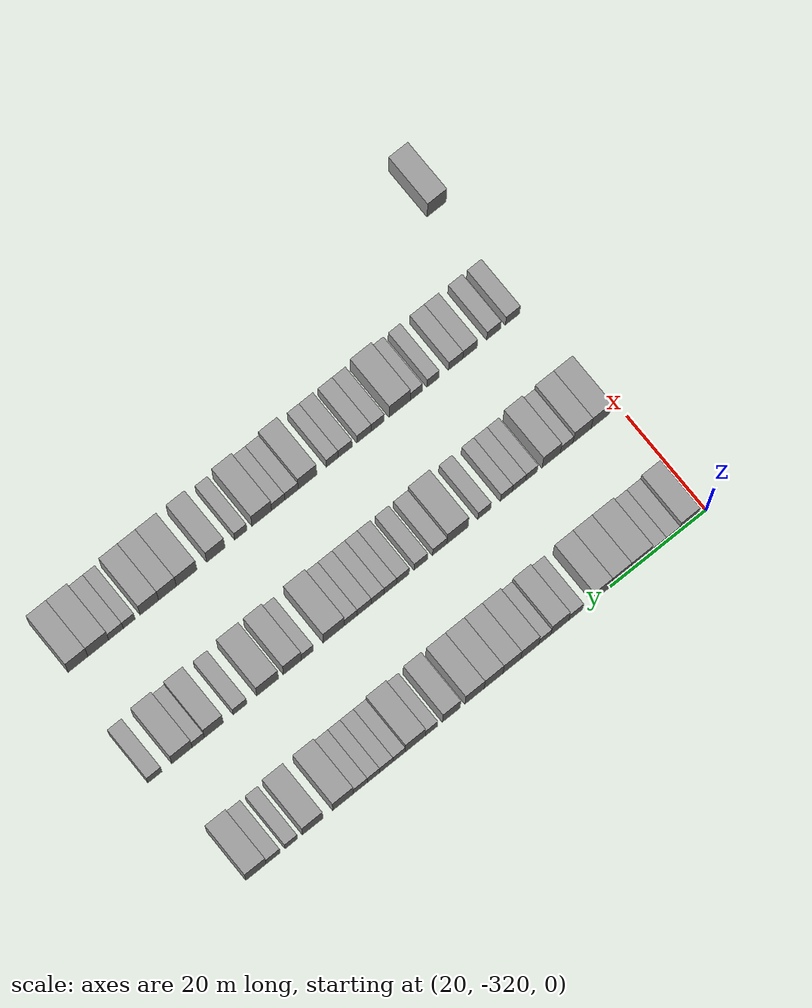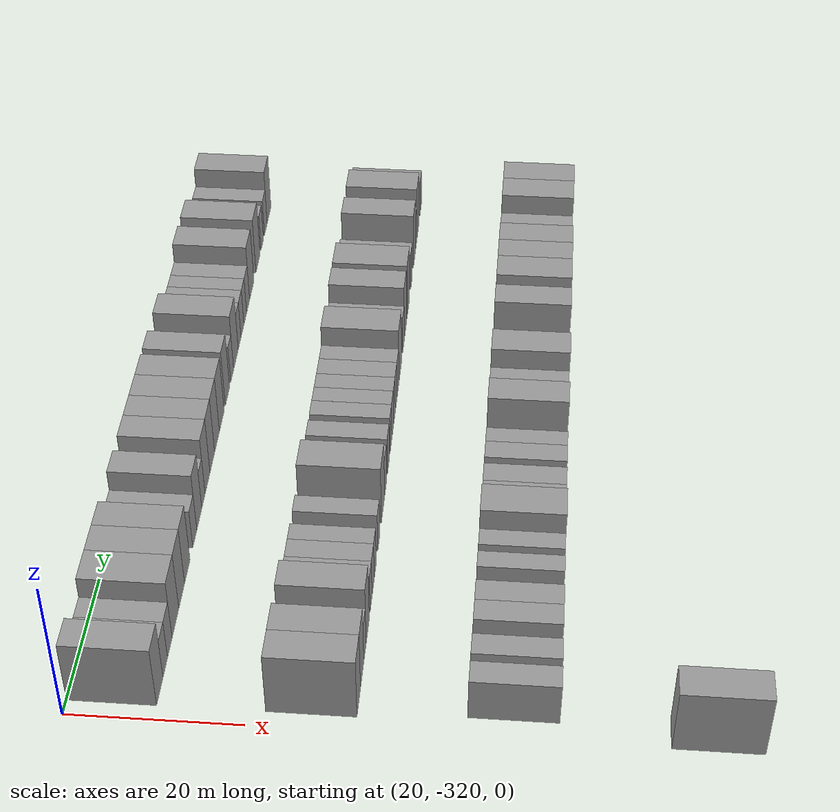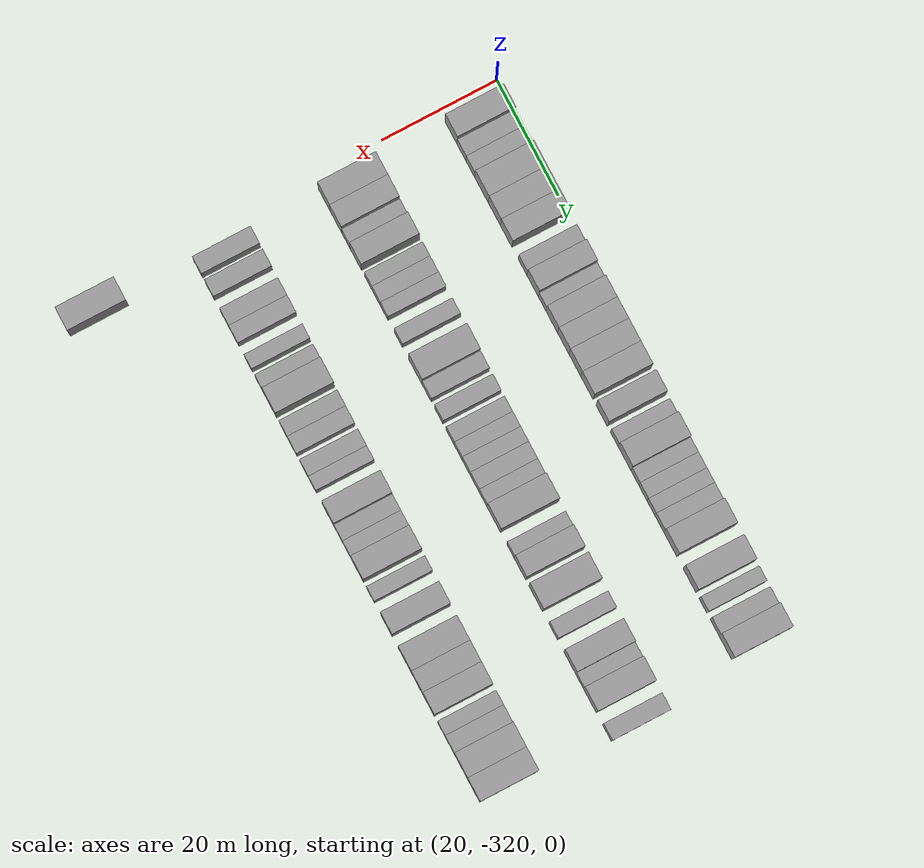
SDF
<sdf version="1.6">
 <world name="default">
  <model name="building_12">
   <static>1</static>
   <pose>25.0000 -316.0874 0 0.000000 0.000000 0.000000</pose>
   <link name="link">
    <pose>0 0 4.50 0 0 0</pose>
    <collision name="collision"><geometry><box><size>10.0000 3.9354 9.0000</size></box></geometry></collision>
    <visual name="visual">
     <cast_shadows>0</cast_shadows>
     <geometry><box><size>10.0000 3.9354 9.0000</size></box></geometry>
     <material>
      <script>
       <uri>model://grey_wall/materials/scripts</uri>
       <uri>model://grey_wall/materials/textures</uri>
       <name>vrc/grey_wall</name>
      </script>
     </material>
    </visual>
   </link>
  </model>
  <model name="building_13">
   <static>1</static>
   <pose>25.0000 -312.6934 0 0.000000 0.000000 0.000000</pose>
   <link name="link">
    <pose>0 0 3.00 0 0 0</pose>
    <collision name="collision"><geometry><box><size>10.0000 2.8527 6.0000</size></box></geometry></collision>
    <visual name="visual">
     <cast_shadows>0</cast_shadows>
     <geometry><box><size>10.0000 2.8527 6.0000</size></box></geometry>
     <material>
      <script>
       <uri>model://grey_wall/materials/scripts</uri>
       <uri>model://grey_wall/materials/textures</uri>
       <name>vrc/grey_wall</name>
      </script>
     </material>
    </visual>
   </link>
  </model>
  <model name="building_14">
   <static>1</static>
   <pose>25.0000 -309.7928 0 0.000000 0.000000 0.000000</pose>
   <link name="link">
    <pose>0 0 3.00 0 0 0</pose>
    <collision name="collision"><geometry><box><size>10.0000 2.9486 6.0000</size></box></geometry></collision>
    <visual name="visual">
     <cast_shadows>0</cast_shadows>
     <geometry><box><size>10.0000 2.9486 6.0000</size></box></geometry>
     <material>
      <script>
       <uri>model://grey_wall/materials/scripts</uri>
       <uri>model://grey_wall/materials/textures</uri>
       <name>vrc/grey_wall</name>
      </script>
     </material>
    </visual>
   </link>
  </model>
  <model name="building_15">
   <static>1</static>
   <pose>25.0000 -306.1103 0 0.000000 0.000000 0.000000</pose>
   <link name="link">
    <pose>0 0 4.50 0 0 0</pose>
    <collision name="collision"><geometry><box><size>10.0000 4.4164 9.0000</size></box></geometry></collision>
    <visual name="visual">
     <cast_shadows>0</cast_shadows>
     <geometry><box><size>10.0000 4.4164 9.0000</size></box></geometry>
     <material>
      <script>
       <uri>model://grey_wall/materials/scripts</uri>
       <uri>model://grey_wall/materials/textures</uri>
       <name>vrc/grey_wall</name>
      </script>
     </material>
    </visual>
   </link>
  </model>
  <model name="building_16">
   <static>1</static>
   <pose>25.0000 -301.9288 0 0.000000 0.000000 0.000000</pose>
   <link name="link">
    <pose>0 0 4.50 0 0 0</pose>
    <collision name="collision"><geometry><box><size>10.0000 3.9465 9.0000</size></box></geometry></collision>
    <visual name="visual">
     <cast_shadows>0</cast_shadows>
     <geometry><box><size>10.0000 3.9465 9.0000</size></box></geometry>
     <material>
      <script>
       <uri>model://grey_wall/materials/scripts</uri>
       <uri>model://grey_wall/materials/textures</uri>
       <name>vrc/grey_wall</name>
      </script>
     </material>
    </visual>
   </link>
  </model>
  <model name="building_17">
   <static>1</static>
   <pose>25.0000 -298.0596 0 0.000000 0.000000 0.000000</pose>
   <link name="link">
    <pose>0 0 4.50 0 0 0</pose>
    <collision name="collision"><geometry><box><size>10.0000 3.7918 9.0000</size></box></geometry></collision>
    <visual name="visual">
     <cast_shadows>0</cast_shadows>
     <geometry><box><size>10.0000 3.7918 9.0000</size></box></geometry>
     <material>
      <script>
       <uri>model://grey_wall/materials/scripts</uri>
       <uri>model://grey_wall/materials/textures</uri>
       <name>vrc/grey_wall</name>
      </script>
     </material>
    </visual>
   </link>
  </model>
  <model name="building_18">
   <static>1</static>
   <pose>25.0000 -292.7049 0 0.000000 0.000000 0.000000</pose>
   <link name="link">
    <pose>0 0 3.00 0 0 0</pose>
    <collision name="collision"><geometry><box><size>10.0000 2.9178 6.0000</size></box></geometry></collision>
    <visual name="visual">
     <cast_shadows>0</cast_shadows>
     <geometry><box><size>10.0000 2.9178 6.0000</size></box></geometry>
     <material>
      <script>
       <uri>model://grey_wall/materials/scripts</uri>
       <uri>model://grey_wall/materials/textures</uri>
       <name>vrc/grey_wall</name>
      </script>
     </material>
    </visual>
   </link>
  </model>
  <model name="building_19">
   <static>1</static>
   <pose>25.0000 -289.4056 0 0.000000 0.000000 0.000000</pose>
   <link name="link">
    <pose>0 0 4.50 0 0 0</pose>
    <collision name="collision"><geometry><box><size>10.0000 3.6808 9.0000</size></box></geometry></collision>
    <visual name="visual">
     <cast_shadows>0</cast_shadows>
     <geometry><box><size>10.0000 3.6808 9.0000</size></box></geometry>
     <material>
      <script>
       <uri>model://grey_wall/materials/scripts</uri>
       <uri>model://grey_wall/materials/textures</uri>
       <name>vrc/grey_wall</name>
      </script>
     </material>
    </visual>
   </link>
  </model>
  <model name="building_20">
   <static>1</static>
   <pose>25.0000 -286.3072 0 0.000000 0.000000 0.000000</pose>
   <link name="link">
    <pose>0 0 3.00 0 0 0</pose>
    <collision name="collision"><geometry><box><size>10.0000 2.5159 6.0000</size></box></geometry></collision>
    <visual name="visual">
     <cast_shadows>0</cast_shadows>
     <geometry><box><size>10.0000 2.5159 6.0000</size></box></geometry>
     <material>
      <script>
       <uri>model://grey_wall/materials/scripts</uri>
       <uri>model://grey_wall/materials/textures</uri>
       <name>vrc/grey_wall</name>
      </script>
     </material>
    </visual>
   </link>
  </model>
  <model name="building_21">
   <static>1</static>
   <pose>25.0000 -283.1710 0 0.000000 0.000000 0.000000</pose>
   <link name="link">
    <pose>0 0 4.50 0 0 0</pose>
    <collision name="collision"><geometry><box><size>10.0000 3.7564 9.0000</size></box></geometry></collision>
    <visual name="visual">
     <cast_shadows>0</cast_shadows>
     <geometry><box><size>10.0000 3.7564 9.0000</size></box></geometry>
     <material>
      <script>
       <uri>model://grey_wall/materials/scripts</uri>
       <uri>model://grey_wall/materials/textures</uri>
       <name>vrc/grey_wall</name>
      </script>
     </material>
    </visual>
   </link>
  </model>
  <model name="building_22">
   <static>1</static>
   <pose>25.0000 -279.4564 0 0.000000 0.000000 0.000000</pose>
   <link name="link">
    <pose>0 0 4.50 0 0 0</pose>
    <collision name="collision"><geometry><box><size>10.0000 3.6729 9.0000</size></box></geometry></collision>
    <visual name="visual">
     <cast_shadows>0</cast_shadows>
     <geometry><box><size>10.0000 3.6729 9.0000</size></box></geometry>
     <material>
      <script>
       <uri>model://grey_wall/materials/scripts</uri>
       <uri>model://grey_wall/materials/textures</uri>
       <name>vrc/grey_wall</name>
      </script>
     </material>
    </visual>
   </link>
  </model>
  <model name="building_23">
   <static>1</static>
   <pose>25.0000 -275.6737 0 0.000000 0.000000 0.000000</pose>
   <link name="link">
    <pose>0 0 4.50 0 0 0</pose>
    <collision name="collision"><geometry><box><size>10.0000 3.8923 9.0000</size></box></geometry></collision>
    <visual name="visual">
     <cast_shadows>0</cast_shadows>
     <geometry><box><size>10.0000 3.8923 9.0000</size></box></geometry>
     <material>
      <script>
       <uri>model://grey_wall/materials/scripts</uri>
       <uri>model://grey_wall/materials/textures</uri>
       <name>vrc/grey_wall</name>
      </script>
     </material>
    </visual>
   </link>
  </model>
  <model name="building_24">
   <static>1</static>
   <pose>25.0000 -271.7563 0 0.000000 0.000000 0.000000</pose>
   <link name="link">
    <pose>0 0 4.50 0 0 0</pose>
    <collision name="collision"><geometry><box><size>10.0000 3.9426 9.0000</size></box></geometry></collision>
    <visual name="visual">
     <cast_shadows>0</cast_shadows>
     <geometry><box><size>10.0000 3.9426 9.0000</size></box></geometry>
     <material>
      <script>
       <uri>model://grey_wall/materials/scripts</uri>
       <uri>model://grey_wall/materials/textures</uri>
       <name>vrc/grey_wall</name>
      </script>
     </material>
    </visual>
   </link>
  </model>
  <model name="building_25">
   <static>1</static>
   <pose>25.0000 -266.9585 0 0.000000 0.000000 0.000000</pose>
   <link name="link">
    <pose>0 0 4.50 0 0 0</pose>
    <collision name="collision"><geometry><box><size>10.0000 3.6529 9.0000</size></box></geometry></collision>
    <visual name="visual">
     <cast_shadows>0</cast_shadows>
     <geometry><box><size>10.0000 3.6529 9.0000</size></box></geometry>
     <material>
      <script>
       <uri>model://grey_wall/materials/scripts</uri>
       <uri>model://grey_wall/materials/textures</uri>
       <name>vrc/grey_wall</name>
      </script>
     </material>
    </visual>
   </link>
  </model>
  <model name="building_26">
   <static>1</static>
   <pose>25.0000 -262.8587 0 0.000000 0.000000 0.000000</pose>
   <link name="link">
    <pose>0 0 3.00 0 0 0</pose>
    <collision name="collision"><geometry><box><size>10.0000 2.5468 6.0000</size></box></geometry></collision>
    <visual name="visual">
     <cast_shadows>0</cast_shadows>
     <geometry><box><size>10.0000 2.5468 6.0000</size></box></geometry>
     <material>
      <script>
       <uri>model://grey_wall/materials/scripts</uri>
       <uri>model://grey_wall/materials/textures</uri>
       <name>vrc/grey_wall</name>
      </script>
     </material>
    </visual>
   </link>
  </model>
  <model name="building_27">
   <static>1</static>
   <pose>25.0000 -259.5225 0 0.000000 0.000000 0.000000</pose>
   <link name="link">
    <pose>0 0 4.50 0 0 0</pose>
    <collision name="collision"><geometry><box><size>10.0000 4.1255 9.0000</size></box></geometry></collision>
    <visual name="visual">
     <cast_shadows>0</cast_shadows>
     <geometry><box><size>10.0000 4.1255 9.0000</size></box></geometry>
     <material>
      <script>
       <uri>model://grey_wall/materials/scripts</uri>
       <uri>model://grey_wall/materials/textures</uri>
       <name>vrc/grey_wall</name>
      </script>
     </material>
    </visual>
   </link>
  </model>
  <model name="building_28">
   <static>1</static>
   <pose>25.0000 -256.1969 0 0.000000 0.000000 0.000000</pose>
   <link name="link">
    <pose>0 0 3.00 0 0 0</pose>
    <collision name="collision"><geometry><box><size>10.0000 2.5257 6.0000</size></box></geometry></collision>
    <visual name="visual">
     <cast_shadows>0</cast_shadows>
     <geometry><box><size>10.0000 2.5257 6.0000</size></box></geometry>
     <material>
      <script>
       <uri>model://grey_wall/materials/scripts</uri>
       <uri>model://grey_wall/materials/textures</uri>
       <name>vrc/grey_wall</name>
      </script>
     </material>
    </visual>
   </link>
  </model>
  <model name="building_29">
   <static>1</static>
   <pose>25.0000 -253.5728 0 0.000000 0.000000 0.000000</pose>
   <link name="link">
    <pose>0 0 3.00 0 0 0</pose>
    <collision name="collision"><geometry><box><size>10.0000 2.7225 6.0000</size></box></geometry></collision>
    <visual name="visual">
     <cast_shadows>0</cast_shadows>
     <geometry><box><size>10.0000 2.7225 6.0000</size></box></geometry>
     <material>
      <script>
       <uri>model://grey_wall/materials/scripts</uri>
       <uri>model://grey_wall/materials/textures</uri>
       <name>vrc/grey_wall</name>
      </script>
     </material>
    </visual>
   </link>
  </model>
  <model name="building_30">
   <static>1</static>
   <pose>25.0000 -250.9515 0 0.000000 0.000000 0.000000</pose>
   <link name="link">
    <pose>0 0 3.00 0 0 0</pose>
    <collision name="collision"><geometry><box><size>10.0000 2.5202 6.0000</size></box></geometry></collision>
    <visual name="visual">
     <cast_shadows>0</cast_shadows>
     <geometry><box><size>10.0000 2.5202 6.0000</size></box></geometry>
     <material>
      <script>
       <uri>model://grey_wall/materials/scripts</uri>
       <uri>model://grey_wall/materials/textures</uri>
       <name>vrc/grey_wall</name>
      </script>
     </material>
    </visual>
   </link>
  </model>
  <model name="building_31">
   <static>1</static>
   <pose>25.0000 -248.2498 0 0.000000 0.000000 0.000000</pose>
   <link name="link">
    <pose>0 0 3.00 0 0 0</pose>
    <collision name="collision"><geometry><box><size>10.0000 2.8833 6.0000</size></box></geometry></collision>
    <visual name="visual">
     <cast_shadows>0</cast_shadows>
     <geometry><box><size>10.0000 2.8833 6.0000</size></box></geometry>
     <material>
      <script>
       <uri>model://grey_wall/materials/scripts</uri>
       <uri>model://grey_wall/materials/textures</uri>
       <name>vrc/grey_wall</name>
      </script>
     </material>
    </visual>
   </link>
  </model>
  <model name="building_32">
   <static>1</static>
   <pose>25.0000 -244.6979 0 0.000000 0.000000 0.000000</pose>
   <link name="link">
    <pose>0 0 4.50 0 0 0</pose>
    <collision name="collision"><geometry><box><size>10.0000 4.2205 9.0000</size></box></geometry></collision>
    <visual name="visual">
     <cast_shadows>0</cast_shadows>
     <geometry><box><size>10.0000 4.2205 9.0000</size></box></geometry>
     <material>
      <script>
       <uri>model://grey_wall/materials/scripts</uri>
       <uri>model://grey_wall/materials/textures</uri>
       <name>vrc/grey_wall</name>
      </script>
     </material>
    </visual>
   </link>
  </model>
  <model name="building_33">
   <static>1</static>
   <pose>25.0000 -238.4900 0 0.000000 0.000000 0.000000</pose>
   <link name="link">
    <pose>0 0 4.50 0 0 0</pose>
    <collision name="collision"><geometry><box><size>10.0000 4.1953 9.0000</size></box></geometry></collision>
    <visual name="visual">
     <cast_shadows>0</cast_shadows>
     <geometry><box><size>10.0000 4.1953 9.0000</size></box></geometry>
     <material>
      <script>
       <uri>model://grey_wall/materials/scripts</uri>
       <uri>model://grey_wall/materials/textures</uri>
       <name>vrc/grey_wall</name>
      </script>
     </material>
    </visual>
   </link>
  </model>
  <model name="building_34">
   <static>1</static>
   <pose>25.0000 -234.1194 0 0.000000 0.000000 0.000000</pose>
   <link name="link">
    <pose>0 0 3.00 0 0 0</pose>
    <collision name="collision"><geometry><box><size>10.0000 2.5460 6.0000</size></box></geometry></collision>
    <visual name="visual">
     <cast_shadows>0</cast_shadows>
     <geometry><box><size>10.0000 2.5460 6.0000</size></box></geometry>
     <material>
      <script>
       <uri>model://grey_wall/materials/scripts</uri>
       <uri>model://grey_wall/materials/textures</uri>
       <name>vrc/grey_wall</name>
      </script>
     </material>
    </visual>
   </link>
  </model>
  <model name="building_35">
   <static>1</static>
   <pose>25.0000 -230.4059 0 0.000000 0.000000 0.000000</pose>
   <link name="link">
    <pose>0 0 3.00 0 0 0</pose>
    <collision name="collision"><geometry><box><size>10.0000 2.8809 6.0000</size></box></geometry></collision>
    <visual name="visual">
     <cast_shadows>0</cast_shadows>
     <geometry><box><size>10.0000 2.8809 6.0000</size></box></geometry>
     <material>
      <script>
       <uri>model://grey_wall/materials/scripts</uri>
       <uri>model://grey_wall/materials/textures</uri>
       <name>vrc/grey_wall</name>
      </script>
     </material>
    </visual>
   </link>
  </model>
  <model name="building_36">
   <static>1</static>
   <pose>25.0000 -226.9026 0 0.000000 0.000000 0.000000</pose>
   <link name="link">
    <pose>0 0 4.50 0 0 0</pose>
    <collision name="collision"><geometry><box><size>10.0000 4.1258 9.0000</size></box></geometry></collision>
    <visual name="visual">
     <cast_shadows>0</cast_shadows>
     <geometry><box><size>10.0000 4.1258 9.0000</size></box></geometry>
     <material>
      <script>
       <uri>model://grey_wall/materials/scripts</uri>
       <uri>model://grey_wall/materials/textures</uri>
       <name>vrc/grey_wall</name>
      </script>
     </material>
    </visual>
   </link>
  </model>
  <model name="building_199">
   <static>1</static>
   <pose>47.0000 -315.9801 0 0.000000 0.000000 0.000000</pose>
   <link name="link">
    <pose>0 0 4.50 0 0 0</pose>
    <collision name="collision"><geometry><box><size>10.0000 3.9412 9.0000</size></box></geometry></collision>
    <visual name="visual">
     <cast_shadows>0</cast_shadows>
     <geometry><box><size>10.0000 3.9412 9.0000</size></box></geometry>
     <material>
      <script>
       <uri>model://grey_wall/materials/scripts</uri>
       <uri>model://grey_wall/materials/textures</uri>
       <name>vrc/grey_wall</name>
      </script>
     </material>
    </visual>
   </link>
  </model>
  <model name="building_200">
   <static>1</static>
   <pose>47.0000 -312.1093 0 0.000000 0.000000 0.000000</pose>
   <link name="link">
    <pose>0 0 4.50 0 0 0</pose>
    <collision name="collision"><geometry><box><size>10.0000 3.8005 9.0000</size></box></geometry></collision>
    <visual name="visual">
     <cast_shadows>0</cast_shadows>
     <geometry><box><size>10.0000 3.8005 9.0000</size></box></geometry>
     <material>
      <script>
       <uri>model://grey_wall/materials/scripts</uri>
       <uri>model://grey_wall/materials/textures</uri>
       <name>vrc/grey_wall</name>
      </script>
     </material>
    </visual>
   </link>
  </model>
  <model name="building_201">
   <static>1</static>
   <pose>47.0000 -308.8733 0 0.000000 0.000000 0.000000</pose>
   <link name="link">
    <pose>0 0 3.00 0 0 0</pose>
    <collision name="collision"><geometry><box><size>10.0000 2.6715 6.0000</size></box></geometry></collision>
    <visual name="visual">
     <cast_shadows>0</cast_shadows>
     <geometry><box><size>10.0000 2.6715 6.0000</size></box></geometry>
     <material>
      <script>
       <uri>model://grey_wall/materials/scripts</uri>
       <uri>model://grey_wall/materials/textures</uri>
       <name>vrc/grey_wall</name>
      </script>
     </material>
    </visual>
   </link>
  </model>
  <model name="building_202">
   <static>1</static>
   <pose>47.0000 -305.6517 0 0.000000 0.000000 0.000000</pose>
   <link name="link">
    <pose>0 0 4.50 0 0 0</pose>
    <collision name="collision"><geometry><box><size>10.0000 3.7718 9.0000</size></box></geometry></collision>
    <visual name="visual">
     <cast_shadows>0</cast_shadows>
     <geometry><box><size>10.0000 3.7718 9.0000</size></box></geometry>
     <material>
      <script>
       <uri>model://grey_wall/materials/scripts</uri>
       <uri>model://grey_wall/materials/textures</uri>
       <name>vrc/grey_wall</name>
      </script>
     </material>
    </visual>
   </link>
  </model>
  <model name="building_203">
   <static>1</static>
   <pose>47.0000 -301.5495 0 0.000000 0.000000 0.000000</pose>
   <link name="link">
    <pose>0 0 3.00 0 0 0</pose>
    <collision name="collision"><geometry><box><size>10.0000 2.4326 6.0000</size></box></geometry></collision>
    <visual name="visual">
     <cast_shadows>0</cast_shadows>
     <geometry><box><size>10.0000 2.4326 6.0000</size></box></geometry>
     <material>
      <script>
       <uri>model://grey_wall/materials/scripts</uri>
       <uri>model://grey_wall/materials/textures</uri>
       <name>vrc/grey_wall</name>
      </script>
     </material>
    </visual>
   </link>
  </model>
  <model name="building_204">
   <static>1</static>
   <pose>47.0000 -298.9523 0 0.000000 0.000000 0.000000</pose>
   <link name="link">
    <pose>0 0 3.00 0 0 0</pose>
    <collision name="collision"><geometry><box><size>10.0000 2.7617 6.0000</size></box></geometry></collision>
    <visual name="visual">
     <cast_shadows>0</cast_shadows>
     <geometry><box><size>10.0000 2.7617 6.0000</size></box></geometry>
     <material>
      <script>
       <uri>model://grey_wall/materials/scripts</uri>
       <uri>model://grey_wall/materials/textures</uri>
       <name>vrc/grey_wall</name>
      </script>
     </material>
    </visual>
   </link>
  </model>
  <model name="building_205">
   <static>1</static>
   <pose>47.0000 -296.3221 0 0.000000 0.000000 0.000000</pose>
   <link name="link">
    <pose>0 0 3.00 0 0 0</pose>
    <collision name="collision"><geometry><box><size>10.0000 2.4988 6.0000</size></box></geometry></collision>
    <visual name="visual">
     <cast_shadows>0</cast_shadows>
     <geometry><box><size>10.0000 2.4988 6.0000</size></box></geometry>
     <material>
      <script>
       <uri>model://grey_wall/materials/scripts</uri>
       <uri>model://grey_wall/materials/textures</uri>
       <name>vrc/grey_wall</name>
      </script>
     </material>
    </visual>
   </link>
  </model>
  <model name="building_206">
   <static>1</static>
   <pose>47.0000 -291.7215 0 0.000000 0.000000 0.000000</pose>
   <link name="link">
    <pose>0 0 3.00 0 0 0</pose>
    <collision name="collision"><geometry><box><size>10.0000 2.7024 6.0000</size></box></geometry></collision>
    <visual name="visual">
     <cast_shadows>0</cast_shadows>
     <geometry><box><size>10.0000 2.7024 6.0000</size></box></geometry>
     <material>
      <script>
       <uri>model://grey_wall/materials/scripts</uri>
       <uri>model://grey_wall/materials/textures</uri>
       <name>vrc/grey_wall</name>
      </script>
     </material>
    </visual>
   </link>
  </model>
  <model name="building_207">
   <static>1</static>
   <pose>47.0000 -286.1635 0 0.000000 0.000000 0.000000</pose>
   <link name="link">
    <pose>0 0 4.50 0 0 0</pose>
    <collision name="collision"><geometry><box><size>10.0000 4.4135 9.0000</size></box></geometry></collision>
    <visual name="visual">
     <cast_shadows>0</cast_shadows>
     <geometry><box><size>10.0000 4.4135 9.0000</size></box></geometry>
     <material>
      <script>
       <uri>model://grey_wall/materials/scripts</uri>
       <uri>model://grey_wall/materials/textures</uri>
       <name>vrc/grey_wall</name>
      </script>
     </material>
    </visual>
   </link>
  </model>
  <model name="building_208">
   <static>1</static>
   <pose>47.0000 -282.4631 0 0.000000 0.000000 0.000000</pose>
   <link name="link">
    <pose>0 0 3.00 0 0 0</pose>
    <collision name="collision"><geometry><box><size>10.0000 2.9874 6.0000</size></box></geometry></collision>
    <visual name="visual">
     <cast_shadows>0</cast_shadows>
     <geometry><box><size>10.0000 2.9874 6.0000</size></box></geometry>
     <material>
      <script>
       <uri>model://grey_wall/materials/scripts</uri>
       <uri>model://grey_wall/materials/textures</uri>
       <name>vrc/grey_wall</name>
      </script>
     </material>
    </visual>
   </link>
  </model>
  <model name="building_209">
   <static>1</static>
   <pose>47.0000 -278.5616 0 0.000000 0.000000 0.000000</pose>
   <link name="link">
    <pose>0 0 3.00 0 0 0</pose>
    <collision name="collision"><geometry><box><size>10.0000 2.8155 6.0000</size></box></geometry></collision>
    <visual name="visual">
     <cast_shadows>0</cast_shadows>
     <geometry><box><size>10.0000 2.8155 6.0000</size></box></geometry>
     <material>
      <script>
       <uri>model://grey_wall/materials/scripts</uri>
       <uri>model://grey_wall/materials/textures</uri>
       <name>vrc/grey_wall</name>
      </script>
     </material>
    </visual>
   </link>
  </model>
  <model name="building_210">
   <static>1</static>
   <pose>47.0000 -274.8339 0 0.000000 0.000000 0.000000</pose>
   <link name="link">
    <pose>0 0 3.00 0 0 0</pose>
    <collision name="collision"><geometry><box><size>10.0000 2.6399 6.0000</size></box></geometry></collision>
    <visual name="visual">
     <cast_shadows>0</cast_shadows>
     <geometry><box><size>10.0000 2.6399 6.0000</size></box></geometry>
     <material>
      <script>
       <uri>model://grey_wall/materials/scripts</uri>
       <uri>model://grey_wall/materials/textures</uri>
       <name>vrc/grey_wall</name>
      </script>
     </material>
    </visual>
   </link>
  </model>
  <model name="building_211">
   <static>1</static>
   <pose>47.0000 -272.2346 0 0.000000 0.000000 0.000000</pose>
   <link name="link">
    <pose>0 0 3.00 0 0 0</pose>
    <collision name="collision"><geometry><box><size>10.0000 2.5586 6.0000</size></box></geometry></collision>
    <visual name="visual">
     <cast_shadows>0</cast_shadows>
     <geometry><box><size>10.0000 2.5586 6.0000</size></box></geometry>
     <material>
      <script>
       <uri>model://grey_wall/materials/scripts</uri>
       <uri>model://grey_wall/materials/textures</uri>
       <name>vrc/grey_wall</name>
      </script>
     </material>
    </visual>
   </link>
  </model>
  <model name="building_212">
   <static>1</static>
   <pose>47.0000 -269.6493 0 0.000000 0.000000 0.000000</pose>
   <link name="link">
    <pose>0 0 3.00 0 0 0</pose>
    <collision name="collision"><geometry><box><size>10.0000 2.6121 6.0000</size></box></geometry></collision>
    <visual name="visual">
     <cast_shadows>0</cast_shadows>
     <geometry><box><size>10.0000 2.6121 6.0000</size></box></geometry>
     <material>
      <script>
       <uri>model://grey_wall/materials/scripts</uri>
       <uri>model://grey_wall/materials/textures</uri>
       <name>vrc/grey_wall</name>
      </script>
     </material>
    </visual>
   </link>
  </model>
  <model name="building_213">
   <static>1</static>
   <pose>47.0000 -266.8809 0 0.000000 0.000000 0.000000</pose>
   <link name="link">
    <pose>0 0 3.00 0 0 0</pose>
    <collision name="collision"><geometry><box><size>10.0000 2.9248 6.0000</size></box></geometry></collision>
    <visual name="visual">
     <cast_shadows>0</cast_shadows>
     <geometry><box><size>10.0000 2.9248 6.0000</size></box></geometry>
     <material>
      <script>
       <uri>model://grey_wall/materials/scripts</uri>
       <uri>model://grey_wall/materials/textures</uri>
       <name>vrc/grey_wall</name>
      </script>
     </material>
    </visual>
   </link>
  </model>
  <model name="building_214">
   <static>1</static>
   <pose>47.0000 -264.0968 0 0.000000 0.000000 0.000000</pose>
   <link name="link">
    <pose>0 0 3.00 0 0 0</pose>
    <collision name="collision"><geometry><box><size>10.0000 2.6432 6.0000</size></box></geometry></collision>
    <visual name="visual">
     <cast_shadows>0</cast_shadows>
     <geometry><box><size>10.0000 2.6432 6.0000</size></box></geometry>
     <material>
      <script>
       <uri>model://grey_wall/materials/scripts</uri>
       <uri>model://grey_wall/materials/textures</uri>
       <name>vrc/grey_wall</name>
      </script>
     </material>
    </visual>
   </link>
  </model>
  <model name="building_215">
   <static>1</static>
   <pose>47.0000 -260.5822 0 0.000000 0.000000 0.000000</pose>
   <link name="link">
    <pose>0 0 4.50 0 0 0</pose>
    <collision name="collision"><geometry><box><size>10.0000 4.3861 9.0000</size></box></geometry></collision>
    <visual name="visual">
     <cast_shadows>0</cast_shadows>
     <geometry><box><size>10.0000 4.3861 9.0000</size></box></geometry>
     <material>
      <script>
       <uri>model://grey_wall/materials/scripts</uri>
       <uri>model://grey_wall/materials/textures</uri>
       <name>vrc/grey_wall</name>
      </script>
     </material>
    </visual>
   </link>
  </model>
  <model name="building_216">
   <static>1</static>
   <pose>47.0000 -255.1515 0 0.000000 0.000000 0.000000</pose>
   <link name="link">
    <pose>0 0 3.00 0 0 0</pose>
    <collision name="collision"><geometry><box><size>10.0000 2.4751 6.0000</size></box></geometry></collision>
    <visual name="visual">
     <cast_shadows>0</cast_shadows>
     <geometry><box><size>10.0000 2.4751 6.0000</size></box></geometry>
     <material>
      <script>
       <uri>model://grey_wall/materials/scripts</uri>
       <uri>model://grey_wall/materials/textures</uri>
       <name>vrc/grey_wall</name>
      </script>
     </material>
    </visual>
   </link>
  </model>
  <model name="building_217">
   <static>1</static>
   <pose>47.0000 -252.0521 0 0.000000 0.000000 0.000000</pose>
   <link name="link">
    <pose>0 0 4.50 0 0 0</pose>
    <collision name="collision"><geometry><box><size>10.0000 3.7237 9.0000</size></box></geometry></collision>
    <visual name="visual">
     <cast_shadows>0</cast_shadows>
     <geometry><box><size>10.0000 3.7237 9.0000</size></box></geometry>
     <material>
      <script>
       <uri>model://grey_wall/materials/scripts</uri>
       <uri>model://grey_wall/materials/textures</uri>
       <name>vrc/grey_wall</name>
      </script>
     </material>
    </visual>
   </link>
  </model>
  <model name="building_218">
   <static>1</static>
   <pose>47.0000 -246.9552 0 0.000000 0.000000 0.000000</pose>
   <link name="link">
    <pose>0 0 4.50 0 0 0</pose>
    <collision name="collision"><geometry><box><size>10.0000 4.4700 9.0000</size></box></geometry></collision>
    <visual name="visual">
     <cast_shadows>0</cast_shadows>
     <geometry><box><size>10.0000 4.4700 9.0000</size></box></geometry>
     <material>
      <script>
       <uri>model://grey_wall/materials/scripts</uri>
       <uri>model://grey_wall/materials/textures</uri>
       <name>vrc/grey_wall</name>
      </script>
     </material>
    </visual>
   </link>
  </model>
  <model name="building_219">
   <static>1</static>
   <pose>47.0000 -241.2975 0 0.000000 0.000000 0.000000</pose>
   <link name="link">
    <pose>0 0 3.00 0 0 0</pose>
    <collision name="collision"><geometry><box><size>10.0000 2.8454 6.0000</size></box></geometry></collision>
    <visual name="visual">
     <cast_shadows>0</cast_shadows>
     <geometry><box><size>10.0000 2.8454 6.0000</size></box></geometry>
     <material>
      <script>
       <uri>model://grey_wall/materials/scripts</uri>
       <uri>model://grey_wall/materials/textures</uri>
       <name>vrc/grey_wall</name>
      </script>
     </material>
    </visual>
   </link>
  </model>
  <model name="building_220">
   <static>1</static>
   <pose>47.0000 -235.9401 0 0.000000 0.000000 0.000000</pose>
   <link name="link">
    <pose>0 0 4.50 0 0 0</pose>
    <collision name="collision"><geometry><box><size>10.0000 3.8693 9.0000</size></box></geometry></collision>
    <visual name="visual">
     <cast_shadows>0</cast_shadows>
     <geometry><box><size>10.0000 3.8693 9.0000</size></box></geometry>
     <material>
      <script>
       <uri>model://grey_wall/materials/scripts</uri>
       <uri>model://grey_wall/materials/textures</uri>
       <name>vrc/grey_wall</name>
      </script>
     </material>
    </visual>
   </link>
  </model>
  <model name="building_221">
   <static>1</static>
   <pose>47.0000 -232.7497 0 0.000000 0.000000 0.000000</pose>
   <link name="link">
    <pose>0 0 3.00 0 0 0</pose>
    <collision name="collision"><geometry><box><size>10.0000 2.5116 6.0000</size></box></geometry></collision>
    <visual name="visual">
     <cast_shadows>0</cast_shadows>
     <geometry><box><size>10.0000 2.5116 6.0000</size></box></geometry>
     <material>
      <script>
       <uri>model://grey_wall/materials/scripts</uri>
       <uri>model://grey_wall/materials/textures</uri>
       <name>vrc/grey_wall</name>
      </script>
     </material>
    </visual>
   </link>
  </model>
  <model name="building_222">
   <static>1</static>
   <pose>47.0000 -229.4115 0 0.000000 0.000000 0.000000</pose>
   <link name="link">
    <pose>0 0 4.50 0 0 0</pose>
    <collision name="collision"><geometry><box><size>10.0000 4.1649 9.0000</size></box></geometry></collision>
    <visual name="visual">
     <cast_shadows>0</cast_shadows>
     <geometry><box><size>10.0000 4.1649 9.0000</size></box></geometry>
     <material>
      <script>
       <uri>model://grey_wall/materials/scripts</uri>
       <uri>model://grey_wall/materials/textures</uri>
       <name>vrc/grey_wall</name>
      </script>
     </material>
    </visual>
   </link>
  </model>
  <model name="building_223">
   <static>1</static>
   <pose>47.0000 -223.8870 0 0.000000 0.000000 0.000000</pose>
   <link name="link">
    <pose>0 0 3.00 0 0 0</pose>
    <collision name="collision"><geometry><box><size>10.0000 2.8841 6.0000</size></box></geometry></collision>
    <visual name="visual">
     <cast_shadows>0</cast_shadows>
     <geometry><box><size>10.0000 2.8841 6.0000</size></box></geometry>
     <material>
      <script>
       <uri>model://grey_wall/materials/scripts</uri>
       <uri>model://grey_wall/materials/textures</uri>
       <name>vrc/grey_wall</name>
      </script>
     </material>
    </visual>
   </link>
  </model>
  <model name="building_383">
   <static>1</static>
   <pose>69.0000 -315.6085 0 0.000000 0.000000 0.000000</pose>
   <link name="link">
    <pose>0 0 3.00 0 0 0</pose>
    <collision name="collision"><geometry><box><size>10.0000 2.9805 6.0000</size></box></geometry></collision>
    <visual name="visual">
     <cast_shadows>0</cast_shadows>
     <geometry><box><size>10.0000 2.9805 6.0000</size></box></geometry>
     <material>
      <script>
       <uri>model://grey_wall/materials/scripts</uri>
       <uri>model://grey_wall/materials/textures</uri>
       <name>vrc/grey_wall</name>
      </script>
     </material>
    </visual>
   </link>
  </model>
  <model name="building_384">
   <static>1</static>
   <pose>69.0000 -311.6565 0 0.000000 0.000000 0.000000</pose>
   <link name="link">
    <pose>0 0 3.00 0 0 0</pose>
    <collision name="collision"><geometry><box><size>10.0000 2.9236 6.0000</size></box></geometry></collision>
    <visual name="visual">
     <cast_shadows>0</cast_shadows>
     <geometry><box><size>10.0000 2.9236 6.0000</size></box></geometry>
     <material>
      <script>
       <uri>model://grey_wall/materials/scripts</uri>
       <uri>model://grey_wall/materials/textures</uri>
       <name>vrc/grey_wall</name>
      </script>
     </material>
    </visual>
   </link>
  </model>
  <model name="building_385">
   <static>1</static>
   <pose>69.0000 -306.6961 0 0.000000 0.000000 0.000000</pose>
   <link name="link">
    <pose>0 0 3.00 0 0 0</pose>
    <collision name="collision"><geometry><box><size>10.0000 2.9971 6.0000</size></box></geometry></collision>
    <visual name="visual">
     <cast_shadows>0</cast_shadows>
     <geometry><box><size>10.0000 2.9971 6.0000</size></box></geometry>
     <material>
      <script>
       <uri>model://grey_wall/materials/scripts</uri>
       <uri>model://grey_wall/materials/textures</uri>
       <name>vrc/grey_wall</name>
      </script>
     </material>
    </visual>
   </link>
  </model>
  <model name="building_386">
   <static>1</static>
   <pose>69.0000 -303.7032 0 0.000000 0.000000 0.000000</pose>
   <link name="link">
    <pose>0 0 3.00 0 0 0</pose>
    <collision name="collision"><geometry><box><size>10.0000 2.9887 6.0000</size></box></geometry></collision>
    <visual name="visual">
     <cast_shadows>0</cast_shadows>
     <geometry><box><size>10.0000 2.9887 6.0000</size></box></geometry>
     <material>
      <script>
       <uri>model://grey_wall/materials/scripts</uri>
       <uri>model://grey_wall/materials/textures</uri>
       <name>vrc/grey_wall</name>
      </script>
     </material>
    </visual>
   </link>
  </model>
  <model name="building_387">
   <static>1</static>
   <pose>69.0000 -298.9659 0 0.000000 0.000000 0.000000</pose>
   <link name="link">
    <pose>0 0 3.00 0 0 0</pose>
    <collision name="collision"><geometry><box><size>10.0000 2.4860 6.0000</size></box></geometry></collision>
    <visual name="visual">
     <cast_shadows>0</cast_shadows>
     <geometry><box><size>10.0000 2.4860 6.0000</size></box></geometry>
     <material>
      <script>
       <uri>model://grey_wall/materials/scripts</uri>
       <uri>model://grey_wall/materials/textures</uri>
       <name>vrc/grey_wall</name>
      </script>
     </material>
    </visual>
   </link>
  </model>
  <model name="building_388">
   <static>1</static>
   <pose>69.0000 -295.4655 0 0.000000 0.000000 0.000000</pose>
   <link name="link">
    <pose>0 0 3.00 0 0 0</pose>
    <collision name="collision"><geometry><box><size>10.0000 2.5148 6.0000</size></box></geometry></collision>
    <visual name="visual">
     <cast_shadows>0</cast_shadows>
     <geometry><box><size>10.0000 2.5148 6.0000</size></box></geometry>
     <material>
      <script>
       <uri>model://grey_wall/materials/scripts</uri>
       <uri>model://grey_wall/materials/textures</uri>
       <name>vrc/grey_wall</name>
      </script>
     </material>
    </visual>
   </link>
  </model>
  <model name="building_389">
   <static>1</static>
   <pose>69.0000 -292.0192 0 0.000000 0.000000 0.000000</pose>
   <link name="link">
    <pose>0 0 4.50 0 0 0</pose>
    <collision name="collision"><geometry><box><size>10.0000 4.3778 9.0000</size></box></geometry></collision>
    <visual name="visual">
     <cast_shadows>0</cast_shadows>
     <geometry><box><size>10.0000 4.3778 9.0000</size></box></geometry>
     <material>
      <script>
       <uri>model://grey_wall/materials/scripts</uri>
       <uri>model://grey_wall/materials/textures</uri>
       <name>vrc/grey_wall</name>
      </script>
     </material>
    </visual>
   </link>
  </model>
  <model name="building_390">
   <static>1</static>
   <pose>69.0000 -287.4700 0 0.000000 0.000000 0.000000</pose>
   <link name="link">
    <pose>0 0 3.00 0 0 0</pose>
    <collision name="collision"><geometry><box><size>10.0000 2.7206 6.0000</size></box></geometry></collision>
    <visual name="visual">
     <cast_shadows>0</cast_shadows>
     <geometry><box><size>10.0000 2.7206 6.0000</size></box></geometry>
     <material>
      <script>
       <uri>model://grey_wall/materials/scripts</uri>
       <uri>model://grey_wall/materials/textures</uri>
       <name>vrc/grey_wall</name>
      </script>
     </material>
    </visual>
   </link>
  </model>
  <model name="building_391">
   <static>1</static>
   <pose>69.0000 -284.6173 0 0.000000 0.000000 0.000000</pose>
   <link name="link">
    <pose>0 0 3.00 0 0 0</pose>
    <collision name="collision"><geometry><box><size>10.0000 2.9847 6.0000</size></box></geometry></collision>
    <visual name="visual">
     <cast_shadows>0</cast_shadows>
     <geometry><box><size>10.0000 2.9847 6.0000</size></box></geometry>
     <material>
      <script>
       <uri>model://grey_wall/materials/scripts</uri>
       <uri>model://grey_wall/materials/textures</uri>
       <name>vrc/grey_wall</name>
      </script>
     </material>
    </visual>
   </link>
  </model>
  <model name="building_392">
   <static>1</static>
   <pose>69.0000 -280.6895 0 0.000000 0.000000 0.000000</pose>
   <link name="link">
    <pose>0 0 3.00 0 0 0</pose>
    <collision name="collision"><geometry><box><size>10.0000 2.8710 6.0000</size></box></geometry></collision>
    <visual name="visual">
     <cast_shadows>0</cast_shadows>
     <geometry><box><size>10.0000 2.8710 6.0000</size></box></geometry>
     <material>
      <script>
       <uri>model://grey_wall/materials/scripts</uri>
       <uri>model://grey_wall/materials/textures</uri>
       <name>vrc/grey_wall</name>
      </script>
     </material>
    </visual>
   </link>
  </model>
  <model name="building_393">
   <static>1</static>
   <pose>69.0000 -278.0255 0 0.000000 0.000000 0.000000</pose>
   <link name="link">
    <pose>0 0 3.00 0 0 0</pose>
    <collision name="collision"><geometry><box><size>10.0000 2.4571 6.0000</size></box></geometry></collision>
    <visual name="visual">
     <cast_shadows>0</cast_shadows>
     <geometry><box><size>10.0000 2.4571 6.0000</size></box></geometry>
     <material>
      <script>
       <uri>model://grey_wall/materials/scripts</uri>
       <uri>model://grey_wall/materials/textures</uri>
       <name>vrc/grey_wall</name>
      </script>
     </material>
    </visual>
   </link>
  </model>
  <model name="building_394">
   <static>1</static>
   <pose>69.0000 -272.8722 0 0.000000 0.000000 0.000000</pose>
   <link name="link">
    <pose>0 0 4.50 0 0 0</pose>
    <collision name="collision"><geometry><box><size>10.0000 3.8494 9.0000</size></box></geometry></collision>
    <visual name="visual">
     <cast_shadows>0</cast_shadows>
     <geometry><box><size>10.0000 3.8494 9.0000</size></box></geometry>
     <material>
      <script>
       <uri>model://grey_wall/materials/scripts</uri>
       <uri>model://grey_wall/materials/textures</uri>
       <name>vrc/grey_wall</name>
      </script>
     </material>
    </visual>
   </link>
  </model>
  <model name="building_395">
   <static>1</static>
   <pose>69.0000 -269.5591 0 0.000000 0.000000 0.000000</pose>
   <link name="link">
    <pose>0 0 3.00 0 0 0</pose>
    <collision name="collision"><geometry><box><size>10.0000 2.7766 6.0000</size></box></geometry></collision>
    <visual name="visual">
     <cast_shadows>0</cast_shadows>
     <geometry><box><size>10.0000 2.7766 6.0000</size></box></geometry>
     <material>
      <script>
       <uri>model://grey_wall/materials/scripts</uri>
       <uri>model://grey_wall/materials/textures</uri>
       <name>vrc/grey_wall</name>
      </script>
     </material>
    </visual>
   </link>
  </model>
  <model name="building_396">
   <static>1</static>
   <pose>69.0000 -266.8018 0 0.000000 0.000000 0.000000</pose>
   <link name="link">
    <pose>0 0 3.00 0 0 0</pose>
    <collision name="collision"><geometry><box><size>10.0000 2.7380 6.0000</size></box></geometry></collision>
    <visual name="visual">
     <cast_shadows>0</cast_shadows>
     <geometry><box><size>10.0000 2.7380 6.0000</size></box></geometry>
     <material>
      <script>
       <uri>model://grey_wall/materials/scripts</uri>
       <uri>model://grey_wall/materials/textures</uri>
       <name>vrc/grey_wall</name>
      </script>
     </material>
    </visual>
   </link>
  </model>
  <model name="building_397">
   <static>1</static>
   <pose>69.0000 -263.4028 0 0.000000 0.000000 0.000000</pose>
   <link name="link">
    <pose>0 0 4.50 0 0 0</pose>
    <collision name="collision"><geometry><box><size>10.0000 4.0600 9.0000</size></box></geometry></collision>
    <visual name="visual">
     <cast_shadows>0</cast_shadows>
     <geometry><box><size>10.0000 4.0600 9.0000</size></box></geometry>
     <material>
      <script>
       <uri>model://grey_wall/materials/scripts</uri>
       <uri>model://grey_wall/materials/textures</uri>
       <name>vrc/grey_wall</name>
      </script>
     </material>
    </visual>
   </link>
  </model>
  <model name="building_398">
   <static>1</static>
   <pose>69.0000 -259.0981 0 0.000000 0.000000 0.000000</pose>
   <link name="link">
    <pose>0 0 3.00 0 0 0</pose>
    <collision name="collision"><geometry><box><size>10.0000 2.5494 6.0000</size></box></geometry></collision>
    <visual name="visual">
     <cast_shadows>0</cast_shadows>
     <geometry><box><size>10.0000 2.5494 6.0000</size></box></geometry>
     <material>
      <script>
       <uri>model://grey_wall/materials/scripts</uri>
       <uri>model://grey_wall/materials/textures</uri>
       <name>vrc/grey_wall</name>
      </script>
     </material>
    </visual>
   </link>
  </model>
  <model name="building_399">
   <static>1</static>
   <pose>69.0000 -253.9337 0 0.000000 0.000000 0.000000</pose>
   <link name="link">
    <pose>0 0 4.50 0 0 0</pose>
    <collision name="collision"><geometry><box><size>10.0000 3.7794 9.0000</size></box></geometry></collision>
    <visual name="visual">
     <cast_shadows>0</cast_shadows>
     <geometry><box><size>10.0000 3.7794 9.0000</size></box></geometry>
     <material>
      <script>
       <uri>model://grey_wall/materials/scripts</uri>
       <uri>model://grey_wall/materials/textures</uri>
       <name>vrc/grey_wall</name>
      </script>
     </material>
    </visual>
   </link>
  </model>
  <model name="building_400">
   <static>1</static>
   <pose>69.0000 -247.9151 0 0.000000 0.000000 0.000000</pose>
   <link name="link">
    <pose>0 0 4.50 0 0 0</pose>
    <collision name="collision"><geometry><box><size>10.0000 4.2578 9.0000</size></box></geometry></collision>
    <visual name="visual">
     <cast_shadows>0</cast_shadows>
     <geometry><box><size>10.0000 4.2578 9.0000</size></box></geometry>
     <material>
      <script>
       <uri>model://grey_wall/materials/scripts</uri>
       <uri>model://grey_wall/materials/textures</uri>
       <name>vrc/grey_wall</name>
      </script>
     </material>
    </visual>
   </link>
  </model>
  <model name="building_401">
   <static>1</static>
   <pose>69.0000 -243.9695 0 0.000000 0.000000 0.000000</pose>
   <link name="link">
    <pose>0 0 4.50 0 0 0</pose>
    <collision name="collision"><geometry><box><size>10.0000 3.6334 9.0000</size></box></geometry></collision>
    <visual name="visual">
     <cast_shadows>0</cast_shadows>
     <geometry><box><size>10.0000 3.6334 9.0000</size></box></geometry>
     <material>
      <script>
       <uri>model://grey_wall/materials/scripts</uri>
       <uri>model://grey_wall/materials/textures</uri>
       <name>vrc/grey_wall</name>
      </script>
     </material>
    </visual>
   </link>
  </model>
  <model name="building_402">
   <static>1</static>
   <pose>69.0000 -240.2548 0 0.000000 0.000000 0.000000</pose>
   <link name="link">
    <pose>0 0 4.50 0 0 0</pose>
    <collision name="collision"><geometry><box><size>10.0000 3.7961 9.0000</size></box></geometry></collision>
    <visual name="visual">
     <cast_shadows>0</cast_shadows>
     <geometry><box><size>10.0000 3.7961 9.0000</size></box></geometry>
     <material>
      <script>
       <uri>model://grey_wall/materials/scripts</uri>
       <uri>model://grey_wall/materials/textures</uri>
       <name>vrc/grey_wall</name>
      </script>
     </material>
    </visual>
   </link>
  </model>
  <model name="building_403">
   <static>1</static>
   <pose>69.0000 -236.1286 0 0.000000 0.000000 0.000000</pose>
   <link name="link">
    <pose>0 0 3.00 0 0 0</pose>
    <collision name="collision"><geometry><box><size>10.0000 2.4563 6.0000</size></box></geometry></collision>
    <visual name="visual">
     <cast_shadows>0</cast_shadows>
     <geometry><box><size>10.0000 2.4563 6.0000</size></box></geometry>
     <material>
      <script>
       <uri>model://grey_wall/materials/scripts</uri>
       <uri>model://grey_wall/materials/textures</uri>
       <name>vrc/grey_wall</name>
      </script>
     </material>
    </visual>
   </link>
  </model>
  <model name="building_404">
   <static>1</static>
   <pose>69.0000 -233.4031 0 0.000000 0.000000 0.000000</pose>
   <link name="link">
    <pose>0 0 3.00 0 0 0</pose>
    <collision name="collision"><geometry><box><size>10.0000 2.9946 6.0000</size></box></geometry></collision>
    <visual name="visual">
     <cast_shadows>0</cast_shadows>
     <geometry><box><size>10.0000 2.9946 6.0000</size></box></geometry>
     <material>
      <script>
       <uri>model://grey_wall/materials/scripts</uri>
       <uri>model://grey_wall/materials/textures</uri>
       <name>vrc/grey_wall</name>
      </script>
     </material>
    </visual>
   </link>
  </model>
  <model name="building_405">
   <static>1</static>
   <pose>69.0000 -229.7811 0 0.000000 0.000000 0.000000</pose>
   <link name="link">
    <pose>0 0 4.50 0 0 0</pose>
    <collision name="collision"><geometry><box><size>10.0000 4.2494 9.0000</size></box></geometry></collision>
    <visual name="visual">
     <cast_shadows>0</cast_shadows>
     <geometry><box><size>10.0000 4.2494 9.0000</size></box></geometry>
     <material>
      <script>
       <uri>model://grey_wall/materials/scripts</uri>
       <uri>model://grey_wall/materials/textures</uri>
       <name>vrc/grey_wall</name>
      </script>
     </material>
    </visual>
   </link>
  </model>
  <model name="building_406">
   <static>1</static>
   <pose>69.0000 -225.6341 0 0.000000 0.000000 0.000000</pose>
   <link name="link">
    <pose>0 0 4.50 0 0 0</pose>
    <collision name="collision"><geometry><box><size>10.0000 4.0446 9.0000</size></box></geometry></collision>
    <visual name="visual">
     <cast_shadows>0</cast_shadows>
     <geometry><box><size>10.0000 4.0446 9.0000</size></box></geometry>
     <material>
      <script>
       <uri>model://grey_wall/materials/scripts</uri>
       <uri>model://grey_wall/materials/textures</uri>
       <name>vrc/grey_wall</name>
      </script>
     </material>
    </visual>
   </link>
  </model>
  <model name="building_570">
   <static>1</static>
   <pose>91.0000 -317.6232 0 0.000000 0.000000 0.000000</pose>
   <link name="link">
    <pose>0 0 4.50 0 0 0</pose>
    <collision name="collision"><geometry><box><size>10.0000 4.0103 9.0000</size></box></geometry></collision>
    <visual name="visual">
     <cast_shadows>0</cast_shadows>
     <geometry><box><size>10.0000 4.0103 9.0000</size></box></geometry>
     <material>
      <script>
       <uri>model://grey_wall/materials/scripts</uri>
       <uri>model://grey_wall/materials/textures</uri>
       <name>vrc/grey_wall</name>
      </script>
     </material>
    </visual>
   </link>
  </model>
 </world>
</sdf>
